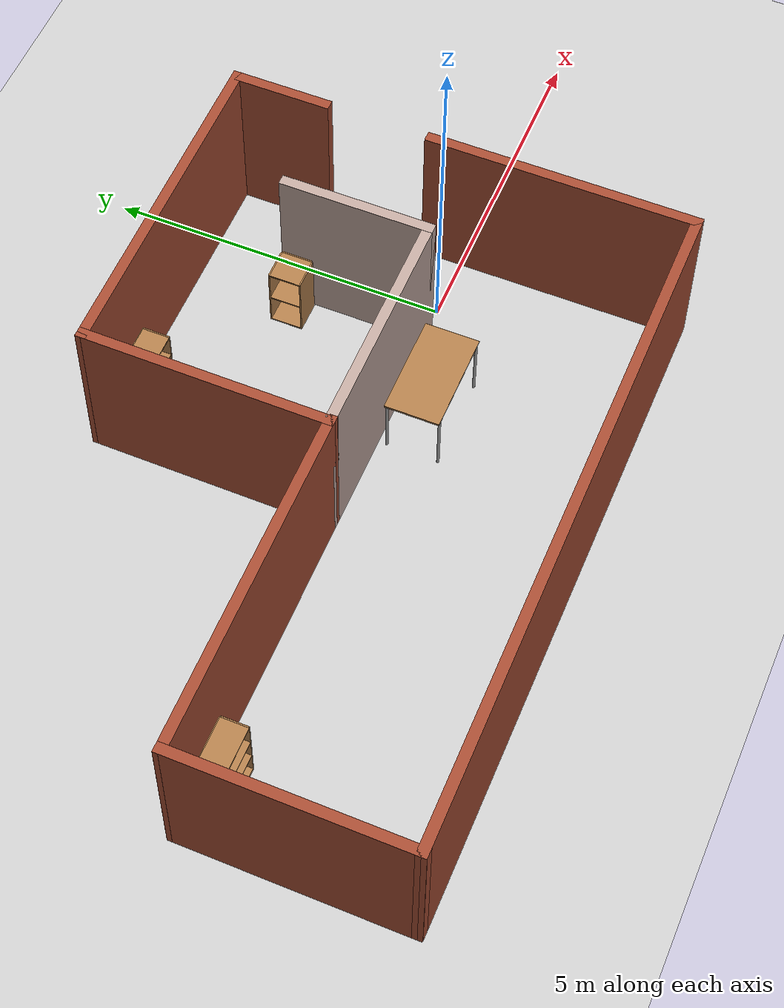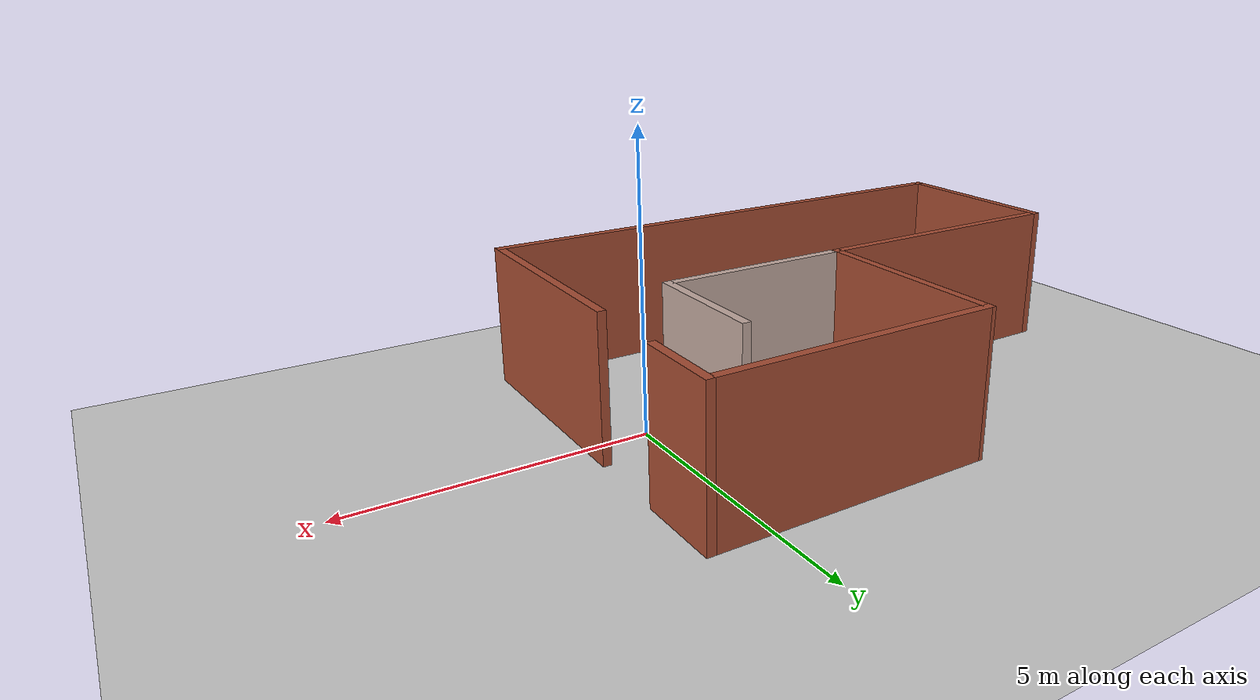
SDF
<sdf version="1.6">
 <world name="default">
  <light name="sun" type="directional">
   <pose>0 0 10 0 -0 0</pose>
   <diffuse>0.8 0.8 0.8 1</diffuse>
   <specular>0.2 0.2 0.2 1</specular>
   <attenuation>
    <range>1000</range>
    <constant>0.9</constant>
    <linear>0.01</linear>
    <quadratic>0.001</quadratic>
   </attenuation>
   <direction>-0.5 0.1 -0.9</direction>
  </light>
  <model name="ground_plane">
   <static>1</static>
   <link name="link">
    <collision name="collision">
     <geometry><plane><normal>0 0 1</normal><size>100 100</size></plane></geometry>
     <surface>
      <contact><collide_bitmask>65535</collide_bitmask></contact>
      <friction><ode><mu>100</mu><mu2>50</mu2></ode></friction>
     </surface>
    </collision>
    <visual name="visual">
     <cast_shadows>0</cast_shadows>
     <geometry><plane><normal>0 0 1</normal><size>100 100</size></plane></geometry>
     <material>
      <script><uri>file://media/materials/scripts/gazebo.material</uri><name>Gazebo/Grey</name></script>
     </material>
    </visual>
   </link>
  </model>
  <gravity>0 0 -9.8</gravity>
  <magnetic_field>6e-06 2.3e-05 -4.2e-05</magnetic_field>
  <atmosphere type="adiabatic"/>
  <physics name="default_physics" default="0" type="ode">
   <max_step_size>0.001</max_step_size>
   <real_time_factor>1</real_time_factor>
   <real_time_update_rate>1000</real_time_update_rate>
  </physics>
  <scene><ambient>0.4 0.4 0.4 1</ambient><background>0.7 0.7 0.7 1</background><shadows>1</shadows></scene>
  <spherical_coordinates>
   <surface_model>EARTH_WGS84</surface_model>
   <latitude_deg>0</latitude_deg>
   <longitude_deg>0</longitude_deg>
   <elevation>0</elevation>
   <heading_deg>0</heading_deg>
  </spherical_coordinates>
  <model name="mybuilding">
   <pose>-3.90514 0.1099 0 0 -0 0</pose>
   <link name="Wall_17">
    <collision name="Wall_17_Collision">
     <geometry><box><size>5 0.15 2.5</size></box></geometry>
     <pose>0 0 1.25 0 -0 0</pose>
    </collision>
    <visual name="Wall_17_Visual">
     <pose>0 0 1.25 0 -0 0</pose>
     <geometry><box><size>5 0.15 2.5</size></box></geometry>
     <material>
      <script><uri>file://media/materials/scripts/gazebo.material</uri><name>Gazebo/Bricks</name></script>
      <ambient>1 1 1 1</ambient>
     </material>
     <meta><layer>0</layer></meta>
    </visual>
    <pose>2.50014 3.4001 0 0 -0 0</pose>
   </link>
   <link name="Wall_18">
    <collision name="Wall_18_Collision">
     <geometry><box><size>1.5 0.15 2.5</size></box></geometry>
     <pose>0 0 1.25 0 -0 0</pose>
    </collision>
    <visual name="Wall_18_Visual">
     <pose>0 0 1.25 0 -0 0</pose>
     <geometry><box><size>1.5 0.15 2.5</size></box></geometry>
     <material>
      <script><uri>file://media/materials/scripts/gazebo.material</uri><name>Gazebo/Bricks</name></script>
      <ambient>1 1 1 1</ambient>
     </material>
     <meta><layer>0</layer></meta>
    </visual>
    <pose>4.92514 2.7251 0 0 0 -1.5708</pose>
   </link>
   <link name="Wall_20">
    <collision name="Wall_20_Collision">
     <geometry><box><size>3.53042 0.15 2.5</size></box></geometry>
     <pose>0 0 1.25 0 -0 0</pose>
    </collision>
    <visual name="Wall_20_Visual">
     <pose>0 0 1.25 0 -0 0</pose>
     <geometry><box><size>3.53042 0.15 2.5</size></box></geometry>
     <material>
      <script><uri>file://media/materials/scripts/gazebo.material</uri><name>Gazebo/Grey</name></script>
      <ambient>0.760784 0.662745 0.627451 1</ambient>
     </material>
     <meta><layer>0</layer></meta>
    </visual>
    <pose>1.75065 -0.107588 0 0 -0 0</pose>
   </link>
   <link name="Wall_21">
    <collision name="Wall_21_Collision">
     <geometry><box><size>2.25 0.15 2.5</size></box></geometry>
     <pose>0 0 1.25 0 -0 0</pose>
    </collision>
    <visual name="Wall_21_Visual">
     <pose>0 0 1.25 0 -0 0</pose>
     <geometry><box><size>2.25 0.15 2.5</size></box></geometry>
     <material>
      <script><uri>file://media/materials/scripts/gazebo.material</uri><name>Gazebo/Grey</name></script>
      <ambient>0.760784 0.662745 0.627451 1</ambient>
     </material>
     <meta><layer>0</layer></meta>
    </visual>
    <pose>3.44086 0.942412 0 0 -0 1.5708</pose>
   </link>
   <link name="Wall_23">
    <collision name="Wall_23_Collision">
     <geometry><box><size>3.65772 0.15 2.5</size></box></geometry>
     <pose>0 0 1.25 0 -0 0</pose>
    </collision>
    <visual name="Wall_23_Visual">
     <pose>0 0 1.25 0 -0 0</pose>
     <geometry><box><size>3.65772 0.15 2.5</size></box></geometry>
     <material>
      <script><uri>file://media/materials/scripts/gazebo.material</uri><name>Gazebo/Bricks</name></script>
      <ambient>1 1 1 1</ambient>
     </material>
     <meta><layer>0</layer></meta>
    </visual>
    <pose>0.06779 1.64626 0 0 0 -1.57499</pose>
   </link>
   <link name="Wall_25">
    <collision name="Wall_25_Collision">
     <geometry><box><size>3.44282 0.15 2.5</size></box></geometry>
     <pose>0 0 1.25 0 -0 0</pose>
    </collision>
    <visual name="Wall_25_Visual">
     <pose>0 0 1.25 0 -0 0</pose>
     <geometry><box><size>3.44282 0.15 2.5</size></box></geometry>
     <material>
      <script><uri>file://media/materials/scripts/gazebo.material</uri><name>Gazebo/Bricks</name></script>
      <ambient>1 1 1 1</ambient>
     </material>
     <meta><layer>0</layer></meta>
    </visual>
    <pose>-4.91884 -1.75374 0 0 -0 1.56714</pose>
   </link>
   <link name="Wall_26">
    <collision name="Wall_26_Collision">
     <geometry><box><size>5.13847 0.15 2.5</size></box></geometry>
     <pose>0 0 1.25 0 -0 0</pose>
    </collision>
    <visual name="Wall_26_Visual">
     <pose>0 0 1.25 0 -0 0</pose>
     <geometry><box><size>5.13847 0.15 2.5</size></box></geometry>
     <material>
      <script><uri>file://media/materials/scripts/gazebo.material</uri><name>Gazebo/Bricks</name></script>
      <ambient>1 1 1 1</ambient>
     </material>
     <meta><layer>0</layer></meta>
    </visual>
    <pose>-2.41858 -0.107588 0 0 -0 0</pose>
   </link>
   <link name="Wall_5">
    <collision name="Wall_5_Collision">
     <geometry><box><size>10 0.15 2.5</size></box></geometry>
     <pose>0 0 1.25 0 -0 0</pose>
    </collision>
    <visual name="Wall_5_Visual">
     <pose>0 0 1.25 0 -0 0</pose>
     <geometry><box><size>10 0.15 2.5</size></box></geometry>
     <material>
      <script><uri>file://media/materials/scripts/gazebo.material</uri><name>Gazebo/Bricks</name></script>
      <ambient>1 1 1 1</ambient>
     </material>
     <meta><layer>0</layer></meta>
    </visual>
    <pose>0.000138 -3.3999 0 0 -0 0</pose>
   </link>
   <link name="Wall_6">
    <collision name="Wall_6_Collision">
     <geometry><box><size>4 0.15 2.5</size></box></geometry>
     <pose>0 0 1.25 0 -0 0</pose>
    </collision>
    <visual name="Wall_6_Visual">
     <pose>0 0 1.25 0 -0 0</pose>
     <geometry><box><size>4 0.15 2.5</size></box></geometry>
     <material>
      <script><uri>file://media/materials/scripts/gazebo.material</uri><name>Gazebo/Bricks</name></script>
      <ambient>1 1 1 1</ambient>
     </material>
     <meta><layer>0</layer></meta>
    </visual>
    <pose>4.92514 -1.4749 0 0 -0 1.5708</pose>
   </link>
   <static>1</static>
  </model>
  <model name="bookshelf">
   <static>1</static>
   <link name="link">
    <inertial><mass>1</mass></inertial>
    <collision name="back">
     <pose>0 0.005 0.6 0 -0 0</pose>
     <geometry><box><size>0.9 0.01 1.2</size></box></geometry>
    </collision>
    <visual name="visual1">
     <pose>0 0.005 0.6 0 -0 0</pose>
     <geometry><box><size>0.9 0.01 1.2</size></box></geometry>
     <material>
      <script><uri>file://media/materials/scripts/gazebo.material</uri><name>Gazebo/Wood</name></script>
     </material>
    </visual>
    <collision name="left_side">
     <pose>0.45 -0.195 0.6 0 -0 0</pose>
     <geometry><box><size>0.02 0.4 1.2</size></box></geometry>
    </collision>
    <visual name="visual2">
     <pose>0.45 -0.195 0.6 0 -0 0</pose>
     <geometry><box><size>0.02 0.4 1.2</size></box></geometry>
     <material>
      <script><uri>file://media/materials/scripts/gazebo.material</uri><name>Gazebo/Wood</name></script>
     </material>
    </visual>
    <collision name="right_side">
     <pose>-0.45 -0.195 0.6 0 -0 0</pose>
     <geometry><box><size>0.02 0.4 1.2</size></box></geometry>
    </collision>
    <visual name="visual3">
     <pose>-0.45 -0.195 0.6 0 -0 0</pose>
     <geometry><box><size>0.02 0.4 1.2</size></box></geometry>
     <material>
      <script><uri>file://media/materials/scripts/gazebo.material</uri><name>Gazebo/Wood</name></script>
     </material>
    </visual>
    <collision name="bottom">
     <pose>0 -0.195 0.03 0 -0 0</pose>
     <geometry><box><size>0.88 0.4 0.06</size></box></geometry>
    </collision>
    <visual name="visual4">
     <pose>0 -0.195 0.03 0 -0 0</pose>
     <geometry><box><size>0.88 0.4 0.06</size></box></geometry>
     <material>
      <script><uri>file://media/materials/scripts/gazebo.material</uri><name>Gazebo/Wood</name></script>
     </material>
    </visual>
    <collision name="top">
     <pose>0 -0.195 1.19 0 -0 0</pose>
     <geometry><box><size>0.88 0.4 0.02</size></box></geometry>
    </collision>
    <visual name="visual5">
     <pose>0 -0.195 1.19 0 -0 0</pose>
     <geometry><box><size>0.88 0.4 0.02</size></box></geometry>
     <material>
      <script><uri>file://media/materials/scripts/gazebo.material</uri><name>Gazebo/Wood</name></script>
     </material>
    </visual>
    <collision name="low_shelf">
     <pose>0 -0.195 0.43 0 -0 0</pose>
     <geometry><box><size>0.88 0.4 0.02</size></box></geometry>
    </collision>
    <visual name="visual6">
     <pose>0 -0.195 0.43 0 -0 0</pose>
     <geometry><box><size>0.88 0.4 0.02</size></box></geometry>
     <material>
      <script><uri>file://media/materials/scripts/gazebo.material</uri><name>Gazebo/Wood</name></script>
     </material>
    </visual>
    <collision name="high_shelf">
     <pose>0 -0.195 0.8 0 -0 0</pose>
     <geometry><box><size>0.88 0.4 0.02</size></box></geometry>
    </collision>
    <visual name="visual7">
     <pose>0 -0.195 0.8 0 -0 0</pose>
     <geometry><box><size>0.88 0.4 0.02</size></box></geometry>
     <material>
      <script><uri>file://media/materials/scripts/gazebo.material</uri><name>Gazebo/Wood</name></script>
     </material>
    </visual>
   </link>
   <pose>-3.08655 3.31796 0 0 -0 0</pose>
  </model>
  <model name="bookshelf_0">
   <static>1</static>
   <link name="link">
    <inertial><mass>1</mass></inertial>
    <collision name="back">
     <pose>0 0.005 0.6 0 -0 0</pose>
     <geometry><box><size>0.9 0.01 1.2</size></box></geometry>
    </collision>
    <visual name="visual1">
     <pose>0 0.005 0.6 0 -0 0</pose>
     <geometry><box><size>0.9 0.01 1.2</size></box></geometry>
     <material>
      <script><uri>file://media/materials/scripts/gazebo.material</uri><name>Gazebo/Wood</name></script>
     </material>
    </visual>
    <collision name="left_side">
     <pose>0.45 -0.195 0.6 0 -0 0</pose>
     <geometry><box><size>0.02 0.4 1.2</size></box></geometry>
    </collision>
    <visual name="visual2">
     <pose>0.45 -0.195 0.6 0 -0 0</pose>
     <geometry><box><size>0.02 0.4 1.2</size></box></geometry>
     <material>
      <script><uri>file://media/materials/scripts/gazebo.material</uri><name>Gazebo/Wood</name></script>
     </material>
    </visual>
    <collision name="right_side">
     <pose>-0.45 -0.195 0.6 0 -0 0</pose>
     <geometry><box><size>0.02 0.4 1.2</size></box></geometry>
    </collision>
    <visual name="visual3">
     <pose>-0.45 -0.195 0.6 0 -0 0</pose>
     <geometry><box><size>0.02 0.4 1.2</size></box></geometry>
     <material>
      <script><uri>file://media/materials/scripts/gazebo.material</uri><name>Gazebo/Wood</name></script>
     </material>
    </visual>
    <collision name="bottom">
     <pose>0 -0.195 0.03 0 -0 0</pose>
     <geometry><box><size>0.88 0.4 0.06</size></box></geometry>
    </collision>
    <visual name="visual4">
     <pose>0 -0.195 0.03 0 -0 0</pose>
     <geometry><box><size>0.88 0.4 0.06</size></box></geometry>
     <material>
      <script><uri>file://media/materials/scripts/gazebo.material</uri><name>Gazebo/Wood</name></script>
     </material>
    </visual>
    <collision name="top">
     <pose>0 -0.195 1.19 0 -0 0</pose>
     <geometry><box><size>0.88 0.4 0.02</size></box></geometry>
    </collision>
    <visual name="visual5">
     <pose>0 -0.195 1.19 0 -0 0</pose>
     <geometry><box><size>0.88 0.4 0.02</size></box></geometry>
     <material>
      <script><uri>file://media/materials/scripts/gazebo.material</uri><name>Gazebo/Wood</name></script>
     </material>
    </visual>
    <collision name="low_shelf">
     <pose>0 -0.195 0.43 0 -0 0</pose>
     <geometry><box><size>0.88 0.4 0.02</size></box></geometry>
    </collision>
    <visual name="visual6">
     <pose>0 -0.195 0.43 0 -0 0</pose>
     <geometry><box><size>0.88 0.4 0.02</size></box></geometry>
     <material>
      <script><uri>file://media/materials/scripts/gazebo.material</uri><name>Gazebo/Wood</name></script>
     </material>
    </visual>
    <collision name="high_shelf">
     <pose>0 -0.195 0.8 0 -0 0</pose>
     <geometry><box><size>0.88 0.4 0.02</size></box></geometry>
    </collision>
    <visual name="visual7">
     <pose>0 -0.195 0.8 0 -0 0</pose>
     <geometry><box><size>0.88 0.4 0.02</size></box></geometry>
     <material>
      <script><uri>file://media/materials/scripts/gazebo.material</uri><name>Gazebo/Wood</name></script>
     </material>
    </visual>
   </link>
   <pose>-8.05287 -0.128584 0 0 -0 0</pose>
  </model>
  <model name="cabinet">
   <static>1</static>
   <link name="cabinet_bottom_plate">
    <inertial>
     <pose>0 0 -1 0 -0 0</pose>
     <inertia><ixx>2.05</ixx><ixy>0</ixy><ixz>0</ixz><iyy>2.05</iyy><iyz>0</iyz><izz>2.05</izz></inertia>
     <mass>25</mass>
    </inertial>
    <collision name="cabinet_bottom_plate_geom">
     <pose>0 0 0.01 0 -0 0</pose>
     <geometry><box><size>0.45 0.45 0.02</size></box></geometry>
    </collision>
    <visual name="cabinet_bottom_plate_geom_visual">
     <pose>0 0 0.01 0 -0 0</pose>
     <geometry><box><size>0.45 0.45 0.02</size></box></geometry>
     <material>
      <script><uri>file://media/materials/scripts/gazebo.material</uri><name>Gazebo/Wood</name></script>
     </material>
    </visual>
    <collision name="cabinet_bottom_plate_geom_cabinet_back_plate">
     <pose>0.235 0 0.51 0 -0 0</pose>
     <geometry><box><size>0.02 0.45 1.02</size></box></geometry>
    </collision>
    <visual name="cabinet_bottom_plate_geom_cabinet_back_plate_visual">
     <pose>0.235 0 0.51 0 -0 0</pose>
     <geometry><box><size>0.02 0.45 1.02</size></box></geometry>
     <material>
      <script><uri>file://media/materials/scripts/gazebo.material</uri><name>Gazebo/Wood</name></script>
     </material>
    </visual>
    <collision name="cabinet_bottom_plate_geom_cabinet_left_plate">
     <pose>0 0.235 0.51 0 -0 0</pose>
     <geometry><box><size>0.45 0.02 1.02</size></box></geometry>
    </collision>
    <visual name="cabinet_bottom_plate_geom_cabinet_left_plate_visual">
     <pose>0 0.235 0.51 0 -0 0</pose>
     <geometry><box><size>0.45 0.02 1.02</size></box></geometry>
     <material>
      <script><uri>file://media/materials/scripts/gazebo.material</uri><name>Gazebo/Wood</name></script>
     </material>
    </visual>
    <collision name="cabinet_bottom_plate_geom_cabinet_middle_plate">
     <pose>0 0 0.51 0 -0 0</pose>
     <geometry><box><size>0.45 0.45 0.02</size></box></geometry>
    </collision>
    <visual name="cabinet_bottom_plate_geom_cabinet_middle_plate_visual">
     <pose>0 0 0.51 0 -0 0</pose>
     <geometry><box><size>0.45 0.45 0.02</size></box></geometry>
     <material>
      <script><uri>file://media/materials/scripts/gazebo.material</uri><name>Gazebo/Wood</name></script>
     </material>
    </visual>
    <collision name="cabinet_bottom_plate_geom_cabinet_right_plate">
     <pose>0 -0.235 0.51 0 -0 0</pose>
     <geometry><box><size>0.45 0.02 1.02</size></box></geometry>
    </collision>
    <visual name="cabinet_bottom_plate_geom_cabinet_right_plate_visual">
     <pose>0 -0.235 0.51 0 -0 0</pose>
     <geometry><box><size>0.45 0.02 1.02</size></box></geometry>
     <material>
      <script><uri>file://media/materials/scripts/gazebo.material</uri><name>Gazebo/Wood</name></script>
     </material>
    </visual>
    <collision name="cabinet_bottom_plate_geom_cabinet_top_plate">
     <pose>0 0 1.01 0 -0 0</pose>
     <geometry><box><size>0.45 0.45 0.02</size></box></geometry>
    </collision>
    <visual name="cabinet_bottom_plate_geom_cabinet_top_plate_visual">
     <pose>0 0 1.01 0 -0 0</pose>
     <geometry><box><size>0.45 0.45 0.02</size></box></geometry>
     <material>
      <script><uri>file://media/materials/scripts/gazebo.material</uri><name>Gazebo/Wood</name></script>
     </material>
    </visual>
   </link>
   <pose>-0.79373 1.93028 0 0 -0 0</pose>
  </model>
  <model name="table">
   <static>1</static>
   <link name="link">
    <collision name="surface">
     <pose>0 0 1 0 -0 0</pose>
     <geometry><box><size>1.5 0.8 0.03</size></box></geometry>
     <surface><friction><ode><mu>0.6</mu><mu2>0.6</mu2></ode></friction></surface>
    </collision>
    <visual name="visual1">
     <pose>0 0 1 0 -0 0</pose>
     <geometry><box><size>1.5 0.8 0.03</size></box></geometry>
     <material>
      <script><uri>file://media/materials/scripts/gazebo.material</uri><name>Gazebo/Wood</name></script>
     </material>
    </visual>
    <collision name="front_left_leg">
     <pose>0.68 0.38 0.5 0 -0 0</pose>
     <geometry><cylinder><radius>0.02</radius><length>1</length></cylinder></geometry>
    </collision>
    <visual name="front_left_leg">
     <pose>0.68 0.38 0.5 0 -0 0</pose>
     <geometry><cylinder><radius>0.02</radius><length>1</length></cylinder></geometry>
     <material>
      <script><uri>file://media/materials/scripts/gazebo.material</uri><name>Gazebo/Grey</name></script>
     </material>
    </visual>
    <collision name="front_right_leg">
     <pose>0.68 -0.38 0.5 0 -0 0</pose>
     <geometry><cylinder><radius>0.02</radius><length>1</length></cylinder></geometry>
    </collision>
    <visual name="front_right_leg">
     <pose>0.68 -0.38 0.5 0 -0 0</pose>
     <geometry><cylinder><radius>0.02</radius><length>1</length></cylinder></geometry>
     <material>
      <script><uri>file://media/materials/scripts/gazebo.material</uri><name>Gazebo/Grey</name></script>
     </material>
    </visual>
    <collision name="back_right_leg">
     <pose>-0.68 -0.38 0.5 0 -0 0</pose>
     <geometry><cylinder><radius>0.02</radius><length>1</length></cylinder></geometry>
    </collision>
    <visual name="back_right_leg">
     <pose>-0.68 -0.38 0.5 0 -0 0</pose>
     <geometry><cylinder><radius>0.02</radius><length>1</length></cylinder></geometry>
     <material>
      <script><uri>file://media/materials/scripts/gazebo.material</uri><name>Gazebo/Grey</name></script>
     </material>
    </visual>
    <collision name="back_left_leg">
     <pose>-0.68 0.38 0.5 0 -0 0</pose>
     <geometry><cylinder><radius>0.02</radius><length>1</length></cylinder></geometry>
    </collision>
    <visual name="back_left_leg">
     <pose>-0.68 0.38 0.5 0 -0 0</pose>
     <geometry><cylinder><radius>0.02</radius><length>1</length></cylinder></geometry>
     <material>
      <script><uri>file://media/materials/scripts/gazebo.material</uri><name>Gazebo/Grey</name></script>
     </material>
    </visual>
   </link>
   <pose>-1.68626 -0.57073 0 0 -0 0</pose>
  </model>
  <model name="my_ball">
   <link name="link_0">
    <inertial>
     <mass>1</mass>
     <inertia><ixx>0.1</ixx><ixy>0</ixy><ixz>0</ixz><iyy>0.1</iyy><iyz>0</iyz><izz>0.1</izz></inertia>
    </inertial>
    <visual name="visual">
     <geometry><sphere><radius>0.1</radius></sphere></geometry>
     <material>
      <lighting>1</lighting>
      <script><uri>file://media/materials/scripts/gazebo.material</uri><name>Gazebo/Grey</name></script>
      <shader type="pixel"><normal_map>__default__</normal_map></shader>
      <ambient>1 1 1 1</ambient>
      <diffuse>1 1 1 1</diffuse>
      <specular>1 1 1 1</specular>
      <emissive>1 1 1 1</emissive>
     </material>
    </visual>
    <collision name="collision">
     <geometry><sphere><radius>0.1</radius></sphere></geometry>
     <surface>
      <friction>
       <ode><mu>1</mu><mu2>1</mu2><fdir1>0 0 0</fdir1><slip1>0</slip1><slip2>0</slip2></ode>
       <torsional>
        <coefficient>1</coefficient>
        <patch_radius>0</patch_radius>
        <surface_radius>0</surface_radius>
        <use_patch_radius>1</use_patch_radius>
        <ode><slip>0</slip></ode>
       </torsional>
      </friction>
      <bounce><restitution_coefficient>0</restitution_coefficient><threshold>1e+06</threshold></bounce>
      <contact>
       <collide_without_contact>0</collide_without_contact>
       <collide_without_contact_bitmask>1</collide_without_contact_bitmask>
       <collide_bitmask>1</collide_bitmask>
       <ode>
        <soft_cfm>0</soft_cfm>
        <soft_erp>0.2</soft_erp>
        <kp>1e+13</kp>
        <kd>1</kd>
        <max_vel>0.01</max_vel>
        <min_depth>0</min_depth>
       </ode>
       <bullet>
        <split_impulse>1</split_impulse>
        <split_impulse_penetration_threshold>-0.01</split_impulse_penetration_threshold>
        <soft_cfm>0</soft_cfm>
        <soft_erp>0.2</soft_erp>
        <kp>1e+13</kp>
        <kd>1</kd>
       </bullet>
      </contact>
     </surface>
    </collision>
   </link>
   <static>0</static>
   <pose>-2.79303 1.60236 0.1 0 -0 0</pose>
  </model>
 </world>
</sdf>
